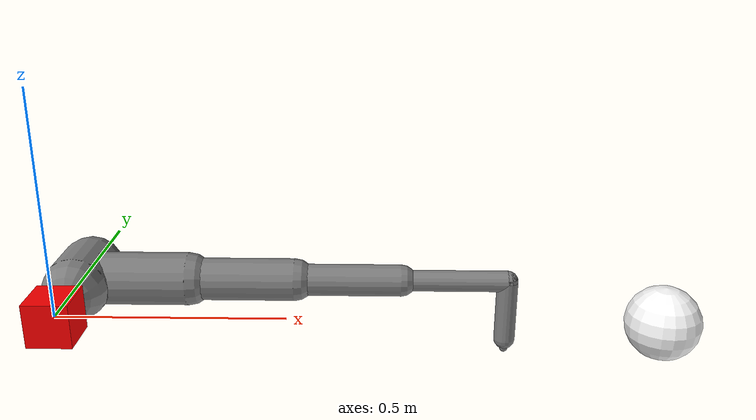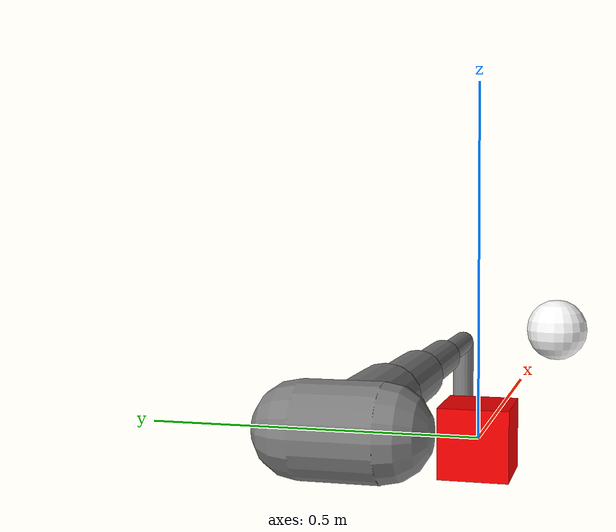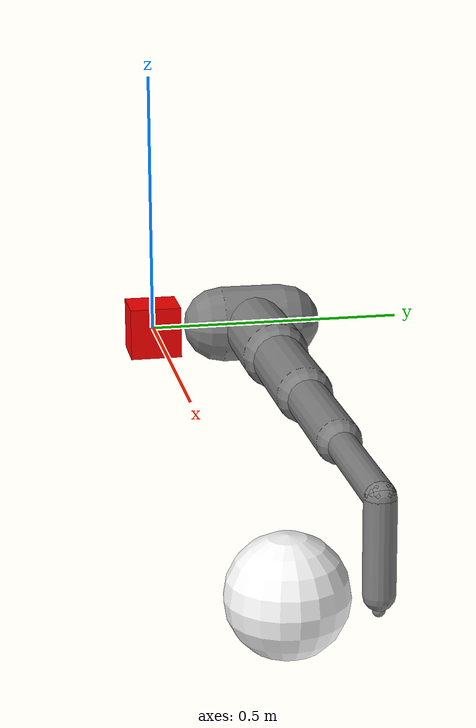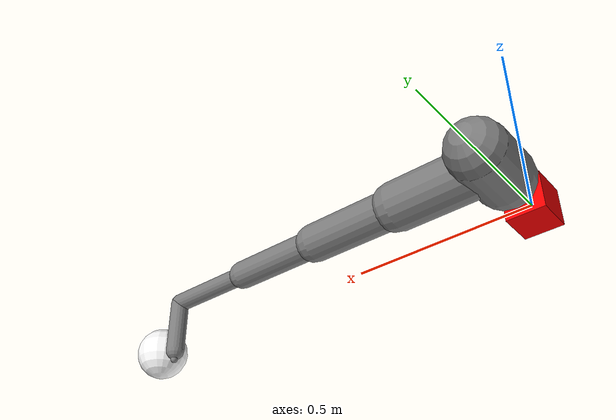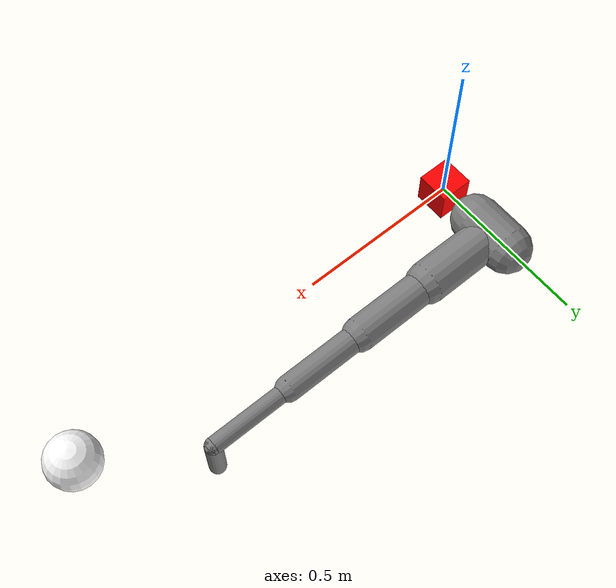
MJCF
<mujoco model="4link6joint">
  <compiler coordinate="local" angle="radian" inertiafromgeom="true" meshdir="Meshes/"/>
  <option timestep="0.005" gravity="0 0 0" iterations='20' integrator="RK4"/>

  <default>
    <joint limited="true" range="-3.14159 3.14159" damping="0.2" armature=".01"/>
    <geom friction=".5 .1 .1" margin="0.002" contype="1" conaffinity="0" type="mesh"/>
  </default>

  <worldbody>
      <body name="palm" pos="0 0.2 0">
          <geom type="capsule" fromto="0 -0.0625 0 0 0.0625 0" size="0.075"/>

          <body name="proximal_1" pos="0 0 0">
              <joint name="y1" type="hinge" pos="0 0 0" axis="0 1 0" range="-2.5236 2.3963" damping="1.0" />
              <joint name="z1" type="hinge" pos="0 0 0" axis="0 0 1" range="-2.5236 2.3963" damping="1.0" />
              <geom type="capsule"  fromto="0 0 0 0.25 0 0" size="0.0625" contype="1" conaffinity="1"/>
              <body name="distal_1" pos="0.25 0 0">
                  <joint name="y2" type="hinge" pos="0 0 0" axis="0 1 0" range="-2.3213 2.3" damping="1.0"/>
                  <geom type="capsule"  fromto="0 0 0 0.25 0 0" size="0.05" contype="1" conaffinity="1"/>
                  <body name="distal_2" pos="0.25 0 0">
                      <joint name="y3" type="hinge" pos="0 0 0" axis="0 1 0" range="-2.3213 2.3" damping="1.0"/>
                      <joint name="z3" type="hinge" pos="0 0 0" axis="0 0 1" range="-2.3213 2.3" damping="1.0"/>
                      <geom type="capsule" fromto="0 0 0 0.25 0 0" size="0.0375" contype="1" conaffinity="1"/>
                      <body name="distal_3" pos="0.25 0 0">
                          <joint name="y4" type="hinge" pos="0 0 0" axis="0 1 0" range="-2.3213 2.3" damping="1.0"/>
                          <geom type="capsule" fromto="0 0 0 0.25 0 0" size="0.025" contype="1" conaffinity="1"/>
                          <body name="distal_4" pos="0.25 0 0">
                              <joint name="y5" type="hinge" pos="0 0 0" axis="0 0 1" range="-2.3213 2.3" damping="1.0"/>
                              <geom type="capsule" fromto="0 0 0 0 0 -0.15" size="0.025" contype="1" conaffinity="1" density="0.0001" />
                              <site name="End of arm" pos="0 0 -0.175" size="0.01" />
                          </body>
                      </body>
                  </body>
              </body>
          </body>
      </body>
    <body name="object" pos="1.3 0.0 0.0">
        <geom rgba="1. 1. 1. 1" type="sphere" size="0.08 0.08 0.08" density='0.00001' contype="1" conaffinity="1"/>
        <joint name="obj_slidez" type="slide" pos="0.1 0.05 0.05" axis="0 0 1" range="-10.3213 10.3" damping="0.005"/>
        <joint name="obj_slidex" type="slide" pos="0.05 0.05 0.05" axis="1 0 0" range="-10.3213 10.3" damping="0.005"/>
        <body name="distal_10" pos="0 0 0">
            <site name="obj_pos" pos="0.025 0.025 0.025" size="0.01" />
        </body>
    </body>

    <body name="goal" pos="0 0 0">
        <geom rgba="1. 0. 0. 1" type="box" size="0.05 0.05 0.05" density='0.00001' contype="0" conaffinity="0"/>
        <site name="goal pos1" pos="0 0 0" size="0.01" />
    </body>

    <body name="distractor_1" pos="0 0 0">
        <geom rgba="1. 1. 0. 1" type="box" size="0.05 0.05 0.05" density='0.00001' contype="0" conaffinity="0"/>
        <site name="goal pos2" pos="0 0 0" size="0.01" />
    </body>

    <body name="distractor_2" pos="0 0 0">
        <geom rgba="0. 1. 0. 1" type="box" size="0.05 0.05 0.05" density='0.00001' contype="0" conaffinity="0"/>
        <site name="goal pos3" pos="0 0 0" size="0.01" />
    </body>
  </worldbody>

  <actuator>
      <motor joint="y1" name="Ay1"/>
      <motor joint="z1" name="Az1"/>
      <motor joint="y2" name="Ay2"/>
      <motor joint="y3" name="Ay3"/>
      <motor joint="z3" name="Az3"/>
      <motor joint="y4" name="Ay4"/>
      <motor joint="y5" name="Ay5"/>
  </actuator>
</mujoco>
